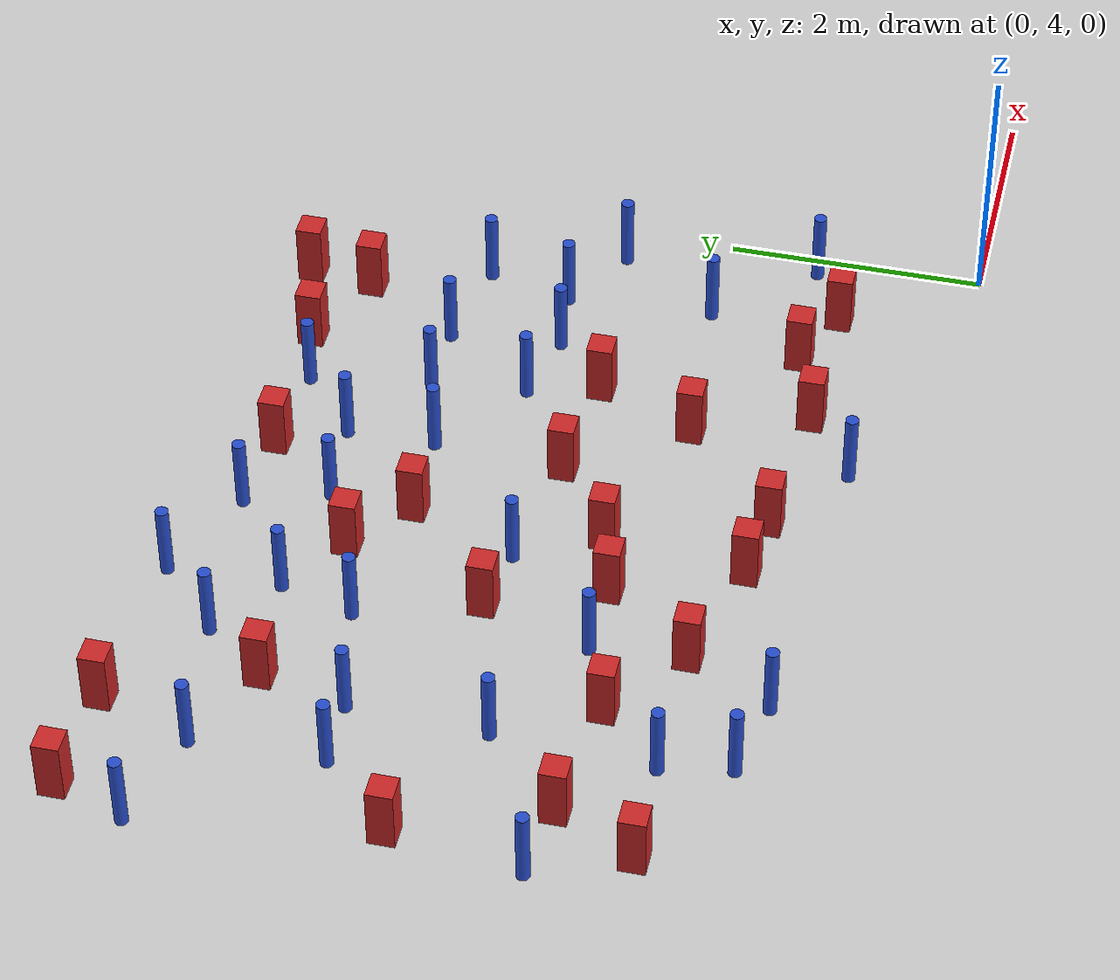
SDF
<sdf version="1.6">
 <world name="default">
  <model name="ground_plane">
   <static>1</static>
   <link name="link">
    <collision name="collision">
     <geometry><plane><normal>0 0 1</normal><size>100 100</size></plane></geometry>
     <surface><friction><ode><mu>100</mu><mu2>50</mu2></ode></friction></surface>
    </collision>
    <visual name="visual">
     <cast_shadows>0</cast_shadows>
     <geometry><plane><normal>0 0 1</normal><size>100 100</size></plane></geometry>
     <material>
      <ambient>1.0 1.0 1.0 1.0</ambient>
      <diffuse>0.8 0.8 0.8 1.0</diffuse>
      <specular>0.01 0.01 0.01 1.000000</specular>
     </material>
    </visual>
   </link>
  </model>
  <model name="pole_obstacle0">
   <static>true</static>
   <pose>-4.90041004545 4.79011778773 7.38925637345e-09 -8.47170692796e-08 1.24976764786e-08 -1.74513093032e-07</pose>
   <link name="link">
    <pose>0 0 0.3 0 -0 0</pose>
    <inertial>
     <mass>1</mass>
     <inertia><ixx>0.145833</ixx><ixy>0</ixy><ixz>0</ixz><iyy>0.145833</iyy><iyz>0</iyz><izz>0.125</izz></inertia>
    </inertial>
    <collision name="collision">
     <geometry><cylinder><radius>0.05</radius><length>.6</length></cylinder></geometry>
    </collision>
    <visual name="visual">
     <geometry><cylinder><radius>0.05</radius><length>.6</length></cylinder></geometry>
     <material>
      <script><name>Gazebo/Blue</name><uri>file://media/materials/scripts/gazebo.material</uri></script>
     </material>
    </visual>
   </link>
  </model>
  <model name="square_post_obstacle7">
   <static>true</static>
   <pose>-3.08108720466 5.1367049342 1.91545236811e-07 -7.35059704564e-06 1.12565212e-07 2.39332434364e-05</pose>
   <link name="link">
    <pose>0 0 0.25 0 -0 0</pose>
    <inertial>
     <mass>100</mass>
     <inertia>
      <ixx>0.166667</ixx>
      <ixy>0</ixy>
      <ixz>0</ixz>
      <iyy>0.166667</iyy>
      <iyz>0</iyz>
      <izz>0.166667</izz>
     </inertia>
    </inertial>
    <collision name="collision"><geometry><box><size>.2 .2 .5</size></box></geometry></collision>
    <visual name="visual">
     <geometry><box><size>.2 .2 .5</size></box></geometry>
     <material>
      <script><name>Gazebo/Red</name><uri>file://media/materials/scripts/gazebo.material</uri></script>
     </material>
    </visual>
   </link>
  </model>
  <model name="square_post_obstacle15">
   <static>true</static>
   <pose>-5.38946317511 8.39628046984 1.91545236811e-07 -7.35059704564e-06 1.12565212e-07 2.39332434364e-05</pose>
   <link name="link">
    <pose>0 0 0.25 0 -0 0</pose>
    <inertial>
     <mass>100</mass>
     <inertia>
      <ixx>0.166667</ixx>
      <ixy>0</ixy>
      <ixz>0</ixz>
      <iyy>0.166667</iyy>
      <iyz>0</iyz>
      <izz>0.166667</izz>
     </inertia>
    </inertial>
    <collision name="collision"><geometry><box><size>.2 .2 .5</size></box></geometry></collision>
    <visual name="visual">
     <geometry><box><size>.2 .2 .5</size></box></geometry>
     <material>
      <script><name>Gazebo/Red</name><uri>file://media/materials/scripts/gazebo.material</uri></script>
     </material>
    </visual>
   </link>
  </model>
  <model name="pole_obstacle13">
   <static>true</static>
   <pose>-2.13632141731 7.96799120031 7.38925637345e-09 -8.47170692799e-08 1.24976765031e-08 -1.7451309302e-07</pose>
   <link name="link">
    <pose>0 0 0.3 0 -0 0</pose>
    <inertial>
     <mass>1</mass>
     <inertia><ixx>0.145833</ixx><ixy>0</ixy><ixz>0</ixz><iyy>0.145833</iyy><iyz>0</iyz><izz>0.125</izz></inertia>
    </inertial>
    <collision name="collision">
     <geometry><cylinder><radius>0.05</radius><length>.6</length></cylinder></geometry>
    </collision>
    <visual name="visual">
     <geometry><cylinder><radius>0.05</radius><length>.6</length></cylinder></geometry>
     <material>
      <script><name>Gazebo/Blue</name><uri>file://media/materials/scripts/gazebo.material</uri></script>
     </material>
    </visual>
   </link>
  </model>
  <model name="square_post_obstacle25">
   <static>true</static>
   <pose>-2.83194556536 6.76145201154 1.91545236811e-07 -7.35059704564e-06 1.12565212e-07 2.39332434364e-05</pose>
   <link name="link">
    <pose>0 0 0.25 0 -0 0</pose>
    <inertial>
     <mass>100</mass>
     <inertia>
      <ixx>0.166667</ixx>
      <ixy>0</ixy>
      <ixz>0</ixz>
      <iyy>0.166667</iyy>
      <iyz>0</iyz>
      <izz>0.166667</izz>
     </inertia>
    </inertial>
    <collision name="collision"><geometry><box><size>.2 .2 .5</size></box></geometry></collision>
    <visual name="visual">
     <geometry><box><size>.2 .2 .5</size></box></geometry>
     <material>
      <script><name>Gazebo/Red</name><uri>file://media/materials/scripts/gazebo.material</uri></script>
     </material>
    </visual>
   </link>
  </model>
  <model name="square_post_obstacle30">
   <static>true</static>
   <pose>-1.77215934666 9.01925671238 1.91545236811e-07 -7.35059704564e-06 1.12565212e-07 2.39332434364e-05</pose>
   <link name="link">
    <pose>0 0 0.25 0 -0 0</pose>
    <inertial>
     <mass>100</mass>
     <inertia>
      <ixx>0.166667</ixx>
      <ixy>0</ixy>
      <ixz>0</ixz>
      <iyy>0.166667</iyy>
      <iyz>0</iyz>
      <izz>0.166667</izz>
     </inertia>
    </inertial>
    <collision name="collision"><geometry><box><size>.2 .2 .5</size></box></geometry></collision>
    <visual name="visual">
     <geometry><box><size>.2 .2 .5</size></box></geometry>
     <material>
      <script><name>Gazebo/Red</name><uri>file://media/materials/scripts/gazebo.material</uri></script>
     </material>
    </visual>
   </link>
  </model>
  <model name="pole_obstacle23">
   <static>true</static>
   <pose>-4.64388195433 7.92467603434 7.38925637345e-09 -8.47170692796e-08 1.24976764786e-08 -1.74513093032e-07</pose>
   <link name="link">
    <pose>0 0 0.3 0 -0 0</pose>
    <inertial>
     <mass>1</mass>
     <inertia><ixx>0.145833</ixx><ixy>0</ixy><ixz>0</ixz><iyy>0.145833</iyy><iyz>0</iyz><izz>0.125</izz></inertia>
    </inertial>
    <collision name="collision">
     <geometry><cylinder><radius>0.05</radius><length>.6</length></cylinder></geometry>
    </collision>
    <visual name="visual">
     <geometry><cylinder><radius>0.05</radius><length>.6</length></cylinder></geometry>
     <material>
      <script><name>Gazebo/Blue</name><uri>file://media/materials/scripts/gazebo.material</uri></script>
     </material>
    </visual>
   </link>
  </model>
  <model name="pole_obstacle26">
   <static>true</static>
   <pose>-4.61162238136 6.16841943095 7.38925637345e-09 -8.47170692796e-08 1.24976764786e-08 -1.74513093032e-07</pose>
   <link name="link">
    <pose>0 0 0.3 0 -0 0</pose>
    <inertial>
     <mass>1</mass>
     <inertia><ixx>0.145833</ixx><ixy>0</ixy><ixz>0</ixz><iyy>0.145833</iyy><iyz>0</iyz><izz>0.125</izz></inertia>
    </inertial>
    <collision name="collision">
     <geometry><cylinder><radius>0.05</radius><length>.6</length></cylinder></geometry>
    </collision>
    <visual name="visual">
     <geometry><cylinder><radius>0.05</radius><length>.6</length></cylinder></geometry>
     <material>
      <script><name>Gazebo/Blue</name><uri>file://media/materials/scripts/gazebo.material</uri></script>
     </material>
    </visual>
   </link>
  </model>
  <model name="pole_obstacle37">
   <static>true</static>
   <pose>-5.01890764935 8.88823943129 7.38925637345e-09 -8.471706928e-08 1.24976765081e-08 -1.74513093015e-07</pose>
   <link name="link">
    <pose>0 0 0.3 0 -0 0</pose>
    <inertial>
     <mass>1</mass>
     <inertia><ixx>0.145833</ixx><ixy>0</ixy><ixz>0</ixz><iyy>0.145833</iyy><iyz>0</iyz><izz>0.125</izz></inertia>
    </inertial>
    <collision name="collision">
     <geometry><cylinder><radius>0.05</radius><length>.6</length></cylinder></geometry>
    </collision>
    <visual name="visual">
     <geometry><cylinder><radius>0.05</radius><length>.6</length></cylinder></geometry>
     <material>
      <script><name>Gazebo/Blue</name><uri>file://media/materials/scripts/gazebo.material</uri></script>
     </material>
    </visual>
   </link>
  </model>
  <model name="pole_obstacle38">
   <static>true</static>
   <pose>-6.06502686461 7.71827825272 7.38925637345e-09 -8.47170692796e-08 1.24976764786e-08 -1.74513093032e-07</pose>
   <link name="link">
    <pose>0 0 0.3 0 -0 0</pose>
    <inertial>
     <mass>1</mass>
     <inertia><ixx>0.145833</ixx><ixy>0</ixy><ixz>0</ixz><iyy>0.145833</iyy><iyz>0</iyz><izz>0.125</izz></inertia>
    </inertial>
    <collision name="collision">
     <geometry><cylinder><radius>0.05</radius><length>.6</length></cylinder></geometry>
    </collision>
    <visual name="visual">
     <geometry><cylinder><radius>0.05</radius><length>.6</length></cylinder></geometry>
     <material>
      <script><name>Gazebo/Blue</name><uri>file://media/materials/scripts/gazebo.material</uri></script>
     </material>
    </visual>
   </link>
  </model>
  <model name="square_post_obstacle46">
   <static>true</static>
   <pose>-1.88935254339 5.03053389389 1.91545236811e-07 -7.35059704564e-06 1.12565212e-07 2.39332434364e-05</pose>
   <link name="link">
    <pose>0 0 0.25 0 -0 0</pose>
    <inertial>
     <mass>100</mass>
     <inertia>
      <ixx>0.166667</ixx>
      <ixy>0</ixy>
      <ixz>0</ixz>
      <iyy>0.166667</iyy>
      <iyz>0</iyz>
      <izz>0.166667</izz>
     </inertia>
    </inertial>
    <collision name="collision"><geometry><box><size>.2 .2 .5</size></box></geometry></collision>
    <visual name="visual">
     <geometry><box><size>.2 .2 .5</size></box></geometry>
     <material>
      <script><name>Gazebo/Red</name><uri>file://media/materials/scripts/gazebo.material</uri></script>
     </material>
    </visual>
   </link>
  </model>
  <model name="square_post_obstacle50">
   <static>true</static>
   <pose>-0.694250307538 5.01690014415 1.91545236811e-07 -7.35059704564e-06 1.12565212e-07 2.39332434364e-05</pose>
   <link name="link">
    <pose>0 0 0.25 0 -0 0</pose>
    <inertial>
     <mass>100</mass>
     <inertia>
      <ixx>0.166667</ixx>
      <ixy>0</ixy>
      <ixz>0</ixz>
      <iyy>0.166667</iyy>
      <iyz>0</iyz>
      <izz>0.166667</izz>
     </inertia>
    </inertial>
    <collision name="collision"><geometry><box><size>.2 .2 .5</size></box></geometry></collision>
    <visual name="visual">
     <geometry><box><size>.2 .2 .5</size></box></geometry>
     <material>
      <script><name>Gazebo/Red</name><uri>file://media/materials/scripts/gazebo.material</uri></script>
     </material>
    </visual>
   </link>
  </model>
  <model name="pole_obstacle51">
   <static>true</static>
   <pose>-4.49223622512 9.3711759897 7.38925637345e-09 -8.471706928e-08 1.24976765081e-08 -1.74513093015e-07</pose>
   <link name="link">
    <pose>0 0 0.3 0 -0 0</pose>
    <inertial>
     <mass>1</mass>
     <inertia><ixx>0.145833</ixx><ixy>0</ixy><ixz>0</ixz><iyy>0.145833</iyy><iyz>0</iyz><izz>0.125</izz></inertia>
    </inertial>
    <collision name="collision">
     <geometry><cylinder><radius>0.05</radius><length>.6</length></cylinder></geometry>
    </collision>
    <visual name="visual">
     <geometry><cylinder><radius>0.05</radius><length>.6</length></cylinder></geometry>
     <material>
      <script><name>Gazebo/Blue</name><uri>file://media/materials/scripts/gazebo.material</uri></script>
     </material>
    </visual>
   </link>
  </model>
  <model name="square_post_obstacle63">
   <static>true</static>
   <pose>-6.17478697632 6.05411711917 1.91545236811e-07 -7.35059704564e-06 1.12565212e-07 2.39332434364e-05</pose>
   <link name="link">
    <pose>0 0 0.25 0 -0 0</pose>
    <inertial>
     <mass>100</mass>
     <inertia>
      <ixx>0.166667</ixx>
      <ixy>0</ixy>
      <ixz>0</ixz>
      <iyy>0.166667</iyy>
      <iyz>0</iyz>
      <izz>0.166667</izz>
     </inertia>
    </inertial>
    <collision name="collision"><geometry><box><size>.2 .2 .5</size></box></geometry></collision>
    <visual name="visual">
     <geometry><box><size>.2 .2 .5</size></box></geometry>
     <material>
      <script><name>Gazebo/Red</name><uri>file://media/materials/scripts/gazebo.material</uri></script>
     </material>
    </visual>
   </link>
  </model>
  <model name="pole_obstacle63">
   <static>true</static>
   <pose>-6.09711467989 8.7223908616 7.38925637345e-09 -8.471706928e-08 1.24976765081e-08 -1.74513093015e-07</pose>
   <link name="link">
    <pose>0 0 0.3 0 -0 0</pose>
    <inertial>
     <mass>1</mass>
     <inertia><ixx>0.145833</ixx><ixy>0</ixy><ixz>0</ixz><iyy>0.145833</iyy><iyz>0</iyz><izz>0.125</izz></inertia>
    </inertial>
    <collision name="collision">
     <geometry><cylinder><radius>0.05</radius><length>.6</length></cylinder></geometry>
    </collision>
    <visual name="visual">
     <geometry><cylinder><radius>0.05</radius><length>.6</length></cylinder></geometry>
     <material>
      <script><name>Gazebo/Blue</name><uri>file://media/materials/scripts/gazebo.material</uri></script>
     </material>
    </visual>
   </link>
  </model>
  <model name="square_post_obstacle68">
   <static>true</static>
   <pose>-4.01927573568 6.15131273928 1.91545236811e-07 -7.35059704564e-06 1.12565212e-07 2.39332434364e-05</pose>
   <link name="link">
    <pose>0 0 0.25 0 -0 0</pose>
    <inertial>
     <mass>100</mass>
     <inertia>
      <ixx>0.166667</ixx>
      <ixy>0</ixy>
      <ixz>0</ixz>
      <iyy>0.166667</iyy>
      <iyz>0</iyz>
      <izz>0.166667</izz>
     </inertia>
    </inertial>
    <collision name="collision"><geometry><box><size>.2 .2 .5</size></box></geometry></collision>
    <visual name="visual">
     <geometry><box><size>.2 .2 .5</size></box></geometry>
     <material>
      <script><name>Gazebo/Red</name><uri>file://media/materials/scripts/gazebo.material</uri></script>
     </material>
    </visual>
   </link>
  </model>
  <model name="square_post_obstacle75">
   <static>true</static>
   <pose>-6.61354602562 7.15502942189 1.91545236811e-07 -7.35059704564e-06 1.12565212e-07 2.39332434364e-05</pose>
   <link name="link">
    <pose>0 0 0.25 0 -0 0</pose>
    <inertial>
     <mass>100</mass>
     <inertia>
      <ixx>0.166667</ixx>
      <ixy>0</ixy>
      <ixz>0</ixz>
      <iyy>0.166667</iyy>
      <iyz>0</iyz>
      <izz>0.166667</izz>
     </inertia>
    </inertial>
    <collision name="collision"><geometry><box><size>.2 .2 .5</size></box></geometry></collision>
    <visual name="visual">
     <geometry><box><size>.2 .2 .5</size></box></geometry>
     <material>
      <script><name>Gazebo/Red</name><uri>file://media/materials/scripts/gazebo.material</uri></script>
     </material>
    </visual>
   </link>
  </model>
  <model name="square_post_obstacle76">
   <static>true</static>
   <pose>-2.2187627527 5.90376065565 1.91545236811e-07 -7.35059704564e-06 1.12565212e-07 2.39332434364e-05</pose>
   <link name="link">
    <pose>0 0 0.25 0 -0 0</pose>
    <inertial>
     <mass>100</mass>
     <inertia>
      <ixx>0.166667</ixx>
      <ixy>0</ixy>
      <ixz>0</ixz>
      <iyy>0.166667</iyy>
      <iyz>0</iyz>
      <izz>0.166667</izz>
     </inertia>
    </inertial>
    <collision name="collision"><geometry><box><size>.2 .2 .5</size></box></geometry></collision>
    <visual name="visual">
     <geometry><box><size>.2 .2 .5</size></box></geometry>
     <material>
      <script><name>Gazebo/Red</name><uri>file://media/materials/scripts/gazebo.material</uri></script>
     </material>
    </visual>
   </link>
  </model>
  <model name="pole_obstacle87">
   <static>true</static>
   <pose>-5.63232811453 5.4548434658 7.38925637345e-09 -8.47170692796e-08 1.24976764786e-08 -1.74513093032e-07</pose>
   <link name="link">
    <pose>0 0 0.3 0 -0 0</pose>
    <inertial>
     <mass>1</mass>
     <inertia><ixx>0.145833</ixx><ixy>0</ixy><ixz>0</ixz><iyy>0.145833</iyy><iyz>0</iyz><izz>0.125</izz></inertia>
    </inertial>
    <collision name="collision">
     <geometry><cylinder><radius>0.05</radius><length>.6</length></cylinder></geometry>
    </collision>
    <visual name="visual">
     <geometry><cylinder><radius>0.05</radius><length>.6</length></cylinder></geometry>
     <material>
      <script><name>Gazebo/Blue</name><uri>file://media/materials/scripts/gazebo.material</uri></script>
     </material>
    </visual>
   </link>
  </model>
  <model name="pole_obstacle96">
   <static>true</static>
   <pose>-0.911840342511 7.15625360255 7.38925637345e-09 -8.471706928e-08 1.24976765086e-08 -1.74513093015e-07</pose>
   <link name="link">
    <pose>0 0 0.3 0 -0 0</pose>
    <inertial>
     <mass>1</mass>
     <inertia><ixx>0.145833</ixx><ixy>0</ixy><ixz>0</ixz><iyy>0.145833</iyy><iyz>0</iyz><izz>0.125</izz></inertia>
    </inertial>
    <collision name="collision">
     <geometry><cylinder><radius>0.05</radius><length>.6</length></cylinder></geometry>
    </collision>
    <visual name="visual">
     <geometry><cylinder><radius>0.05</radius><length>.6</length></cylinder></geometry>
     <material>
      <script><name>Gazebo/Blue</name><uri>file://media/materials/scripts/gazebo.material</uri></script>
     </material>
    </visual>
   </link>
  </model>
  <model name="square_post_obstacle86">
   <static>true</static>
   <pose>-4.5598008904 5.45001695125 1.91545236811e-07 -7.35059704564e-06 1.12565212e-07 2.39332434364e-05</pose>
   <link name="link">
    <pose>0 0 0.25 0 -0 0</pose>
    <inertial>
     <mass>100</mass>
     <inertia>
      <ixx>0.166667</ixx>
      <ixy>0</ixy>
      <ixz>0</ixz>
      <iyy>0.166667</iyy>
      <iyz>0</iyz>
      <izz>0.166667</izz>
     </inertia>
    </inertial>
    <collision name="collision"><geometry><box><size>.2 .2 .5</size></box></geometry></collision>
    <visual name="visual">
     <geometry><box><size>.2 .2 .5</size></box></geometry>
     <material>
      <script><name>Gazebo/Red</name><uri>file://media/materials/scripts/gazebo.material</uri></script>
     </material>
    </visual>
   </link>
  </model>
  <model name="pole_obstacle97">
   <static>true</static>
   <pose>-2.43078610152 4.64739310657 7.38925637345e-09 -8.47170692798e-08 1.24976765033e-08 -1.74513093019e-07</pose>
   <link name="link">
    <pose>0 0 0.3 0 -0 0</pose>
    <inertial>
     <mass>1</mass>
     <inertia><ixx>0.145833</ixx><ixy>0</ixy><ixz>0</ixz><iyy>0.145833</iyy><iyz>0</iyz><izz>0.125</izz></inertia>
    </inertial>
    <collision name="collision">
     <geometry><cylinder><radius>0.05</radius><length>.6</length></cylinder></geometry>
    </collision>
    <visual name="visual">
     <geometry><cylinder><radius>0.05</radius><length>.6</length></cylinder></geometry>
     <material>
      <script><name>Gazebo/Blue</name><uri>file://media/materials/scripts/gazebo.material</uri></script>
     </material>
    </visual>
   </link>
  </model>
  <model name="pole_obstacle101">
   <static>true</static>
   <pose>-3.6860149269 9.02939962403 7.38925637345e-09 -8.47170692793e-08 1.24976764408e-08 -1.74513093041e-07</pose>
   <link name="link">
    <pose>0 0 0.3 0 -0 0</pose>
    <inertial>
     <mass>1</mass>
     <inertia><ixx>0.145833</ixx><ixy>0</ixy><ixz>0</ixz><iyy>0.145833</iyy><iyz>0</iyz><izz>0.125</izz></inertia>
    </inertial>
    <collision name="collision">
     <geometry><cylinder><radius>0.05</radius><length>.6</length></cylinder></geometry>
    </collision>
    <visual name="visual">
     <geometry><cylinder><radius>0.05</radius><length>.6</length></cylinder></geometry>
     <material>
      <script><name>Gazebo/Blue</name><uri>file://media/materials/scripts/gazebo.material</uri></script>
     </material>
    </visual>
   </link>
  </model>
  <model name="square_post_obstacle91">
   <static>true</static>
   <pose>-5.18790217122 5.93545474325 1.91545236811e-07 -7.35059704564e-06 1.12565212e-07 2.39332434364e-05</pose>
   <link name="link">
    <pose>0 0 0.25 0 -0 0</pose>
    <inertial>
     <mass>100</mass>
     <inertia>
      <ixx>0.166667</ixx>
      <ixy>0</ixy>
      <ixz>0</ixz>
      <iyy>0.166667</iyy>
      <iyz>0</iyz>
      <izz>0.166667</izz>
     </inertia>
    </inertial>
    <collision name="collision"><geometry><box><size>.2 .2 .5</size></box></geometry></collision>
    <visual name="visual">
     <geometry><box><size>.2 .2 .5</size></box></geometry>
     <material>
      <script><name>Gazebo/Red</name><uri>file://media/materials/scripts/gazebo.material</uri></script>
     </material>
    </visual>
   </link>
  </model>
  <model name="pole_obstacle106">
   <static>true</static>
   <pose>-5.52808940711 4.92229902347 7.38925637345e-09 -8.47170692796e-08 1.24976764786e-08 -1.74513093032e-07</pose>
   <link name="link">
    <pose>0 0 0.3 0 -0 0</pose>
    <inertial>
     <mass>1</mass>
     <inertia><ixx>0.145833</ixx><ixy>0</ixy><ixz>0</ixz><iyy>0.145833</iyy><iyz>0</iyz><izz>0.125</izz></inertia>
    </inertial>
    <collision name="collision">
     <geometry><cylinder><radius>0.05</radius><length>.6</length></cylinder></geometry>
    </collision>
    <visual name="visual">
     <geometry><cylinder><radius>0.05</radius><length>.6</length></cylinder></geometry>
     <material>
      <script><name>Gazebo/Blue</name><uri>file://media/materials/scripts/gazebo.material</uri></script>
     </material>
    </visual>
   </link>
  </model>
  <model name="square_post_obstacle97">
   <static>true</static>
   <pose>-6.47592038201 5.43582587929 1.91545236811e-07 -7.35059704564e-06 1.12565212e-07 2.39332434364e-05</pose>
   <link name="link">
    <pose>0 0 0.25 0 -0 0</pose>
    <inertial>
     <mass>100</mass>
     <inertia>
      <ixx>0.166667</ixx>
      <ixy>0</ixy>
      <ixz>0</ixz>
      <iyy>0.166667</iyy>
      <iyz>0</iyz>
      <izz>0.166667</izz>
     </inertia>
    </inertial>
    <collision name="collision"><geometry><box><size>.2 .2 .5</size></box></geometry></collision>
    <visual name="visual">
     <geometry><box><size>.2 .2 .5</size></box></geometry>
     <material>
      <script><name>Gazebo/Red</name><uri>file://media/materials/scripts/gazebo.material</uri></script>
     </material>
    </visual>
   </link>
  </model>
  <model name="square_post_obstacle98">
   <static>true</static>
   <pose>-3.50363936073 7.75468292573 1.91545236811e-07 -7.35059704564e-06 1.12565212e-07 2.39332434364e-05</pose>
   <link name="link">
    <pose>0 0 0.25 0 -0 0</pose>
    <inertial>
     <mass>100</mass>
     <inertia>
      <ixx>0.166667</ixx>
      <ixy>0</ixy>
      <ixz>0</ixz>
      <iyy>0.166667</iyy>
      <iyz>0</iyz>
      <izz>0.166667</izz>
     </inertia>
    </inertial>
    <collision name="collision"><geometry><box><size>.2 .2 .5</size></box></geometry></collision>
    <visual name="visual">
     <geometry><box><size>.2 .2 .5</size></box></geometry>
     <material>
      <script><name>Gazebo/Red</name><uri>file://media/materials/scripts/gazebo.material</uri></script>
     </material>
    </visual>
   </link>
  </model>
  <model name="pole_obstacle116">
   <static>true</static>
   <pose>-0.326461420758 6.80777717425 7.38925637345e-09 -8.471706928e-08 1.24976765079e-08 -1.74513093015e-07</pose>
   <link name="link">
    <pose>0 0 0.3 0 -0 0</pose>
    <inertial>
     <mass>1</mass>
     <inertia><ixx>0.145833</ixx><ixy>0</ixy><ixz>0</ixz><iyy>0.145833</iyy><iyz>0</iyz><izz>0.125</izz></inertia>
    </inertial>
    <collision name="collision">
     <geometry><cylinder><radius>0.05</radius><length>.6</length></cylinder></geometry>
    </collision>
    <visual name="visual">
     <geometry><cylinder><radius>0.05</radius><length>.6</length></cylinder></geometry>
     <material>
      <script><name>Gazebo/Blue</name><uri>file://media/materials/scripts/gazebo.material</uri></script>
     </material>
    </visual>
   </link>
  </model>
  <model name="pole_obstacle126">
   <static>true</static>
   <pose>-1.53864034864 7.96190276713 7.38925637345e-09 -8.47170692799e-08 1.24976764983e-08 -1.74513093021e-07</pose>
   <link name="link">
    <pose>0 0 0.3 0 -0 0</pose>
    <inertial>
     <mass>1</mass>
     <inertia><ixx>0.145833</ixx><ixy>0</ixy><ixz>0</ixz><iyy>0.145833</iyy><iyz>0</iyz><izz>0.125</izz></inertia>
    </inertial>
    <collision name="collision">
     <geometry><cylinder><radius>0.05</radius><length>.6</length></cylinder></geometry>
    </collision>
    <visual name="visual">
     <geometry><cylinder><radius>0.05</radius><length>.6</length></cylinder></geometry>
     <material>
      <script><name>Gazebo/Blue</name><uri>file://media/materials/scripts/gazebo.material</uri></script>
     </material>
    </visual>
   </link>
  </model>
  <model name="pole_obstacle127">
   <static>true</static>
   <pose>-2.77022031663 7.78093661051 7.38925637345e-09 -8.47170692798e-08 1.24976765033e-08 -1.74513093019e-07</pose>
   <link name="link">
    <pose>0 0 0.3 0 -0 0</pose>
    <inertial>
     <mass>1</mass>
     <inertia><ixx>0.145833</ixx><ixy>0</ixy><ixz>0</ixz><iyy>0.145833</iyy><iyz>0</iyz><izz>0.125</izz></inertia>
    </inertial>
    <collision name="collision">
     <geometry><cylinder><radius>0.05</radius><length>.6</length></cylinder></geometry>
    </collision>
    <visual name="visual">
     <geometry><cylinder><radius>0.05</radius><length>.6</length></cylinder></geometry>
     <material>
      <script><name>Gazebo/Blue</name><uri>file://media/materials/scripts/gazebo.material</uri></script>
     </material>
    </visual>
   </link>
  </model>
  <model name="pole_obstacle132">
   <static>true</static>
   <pose>-0.836920620603 6.01492802616 7.38925637345e-09 -8.471706928e-08 1.24976765086e-08 -1.74513093015e-07</pose>
   <link name="link">
    <pose>0 0 0.3 0 -0 0</pose>
    <inertial>
     <mass>1</mass>
     <inertia><ixx>0.145833</ixx><ixy>0</ixy><ixz>0</ixz><iyy>0.145833</iyy><iyz>0</iyz><izz>0.125</izz></inertia>
    </inertial>
    <collision name="collision">
     <geometry><cylinder><radius>0.05</radius><length>.6</length></cylinder></geometry>
    </collision>
    <visual name="visual">
     <geometry><cylinder><radius>0.05</radius><length>.6</length></cylinder></geometry>
     <material>
      <script><name>Gazebo/Blue</name><uri>file://media/materials/scripts/gazebo.material</uri></script>
     </material>
    </visual>
   </link>
  </model>
  <model name="pole_obstacle138">
   <static>true</static>
   <pose>-5.56855541832 6.67156435658 7.38925637345e-09 -8.47170692796e-08 1.24976764786e-08 -1.74513093032e-07</pose>
   <link name="link">
    <pose>0 0 0.3 0 -0 0</pose>
    <inertial>
     <mass>1</mass>
     <inertia><ixx>0.145833</ixx><ixy>0</ixy><ixz>0</ixz><iyy>0.145833</iyy><iyz>0</iyz><izz>0.125</izz></inertia>
    </inertial>
    <collision name="collision">
     <geometry><cylinder><radius>0.05</radius><length>.6</length></cylinder></geometry>
    </collision>
    <visual name="visual">
     <geometry><cylinder><radius>0.05</radius><length>.6</length></cylinder></geometry>
     <material>
      <script><name>Gazebo/Blue</name><uri>file://media/materials/scripts/gazebo.material</uri></script>
     </material>
    </visual>
   </link>
  </model>
  <model name="pole_obstacle140">
   <static>true</static>
   <pose>-5.53730651426 7.72960855693 7.38925637345e-09 -8.47170692796e-08 1.24976764786e-08 -1.74513093032e-07</pose>
   <link name="link">
    <pose>0 0 0.3 0 -0 0</pose>
    <inertial>
     <mass>1</mass>
     <inertia><ixx>0.145833</ixx><ixy>0</ixy><ixz>0</ixz><iyy>0.145833</iyy><iyz>0</iyz><izz>0.125</izz></inertia>
    </inertial>
    <collision name="collision">
     <geometry><cylinder><radius>0.05</radius><length>.6</length></cylinder></geometry>
    </collision>
    <visual name="visual">
     <geometry><cylinder><radius>0.05</radius><length>.6</length></cylinder></geometry>
     <material>
      <script><name>Gazebo/Blue</name><uri>file://media/materials/scripts/gazebo.material</uri></script>
     </material>
    </visual>
   </link>
  </model>
  <model name="pole_obstacle148">
   <static>true</static>
   <pose>-6.75593413323 6.1459177395 7.38925637345e-09 -8.47170692796e-08 1.24976764786e-08 -1.74513093032e-07</pose>
   <link name="link">
    <pose>0 0 0.3 0 -0 0</pose>
    <inertial>
     <mass>1</mass>
     <inertia><ixx>0.145833</ixx><ixy>0</ixy><ixz>0</ixz><iyy>0.145833</iyy><iyz>0</iyz><izz>0.125</izz></inertia>
    </inertial>
    <collision name="collision">
     <geometry><cylinder><radius>0.05</radius><length>.6</length></cylinder></geometry>
    </collision>
    <visual name="visual">
     <geometry><cylinder><radius>0.05</radius><length>.6</length></cylinder></geometry>
     <material>
      <script><name>Gazebo/Blue</name><uri>file://media/materials/scripts/gazebo.material</uri></script>
     </material>
    </visual>
   </link>
  </model>
  <model name="square_post_obstacle138">
   <static>true</static>
   <pose>-1.22843868507 5.24228422694 1.91545236811e-07 -7.35059704564e-06 1.12565212e-07 2.39332434364e-05</pose>
   <link name="link">
    <pose>0 0 0.25 0 -0 0</pose>
    <inertial>
     <mass>100</mass>
     <inertia>
      <ixx>0.166667</ixx>
      <ixy>0</ixy>
      <ixz>0</ixz>
      <iyy>0.166667</iyy>
      <iyz>0</iyz>
      <izz>0.166667</izz>
     </inertia>
    </inertial>
    <collision name="collision"><geometry><box><size>.2 .2 .5</size></box></geometry></collision>
    <visual name="visual">
     <geometry><box><size>.2 .2 .5</size></box></geometry>
     <material>
      <script><name>Gazebo/Red</name><uri>file://media/materials/scripts/gazebo.material</uri></script>
     </material>
    </visual>
   </link>
  </model>
  <model name="square_post_obstacle144">
   <static>true</static>
   <pose>-5.83603284577 9.44559122272 1.91545236811e-07 -7.35059704564e-06 1.12565212e-07 2.39332434364e-05</pose>
   <link name="link">
    <pose>0 0 0.25 0 -0 0</pose>
    <inertial>
     <mass>100</mass>
     <inertia>
      <ixx>0.166667</ixx>
      <ixy>0</ixy>
      <ixz>0</ixz>
      <iyy>0.166667</iyy>
      <iyz>0</iyz>
      <izz>0.166667</izz>
     </inertia>
    </inertial>
    <collision name="collision"><geometry><box><size>.2 .2 .5</size></box></geometry></collision>
    <visual name="visual">
     <geometry><box><size>.2 .2 .5</size></box></geometry>
     <material>
      <script><name>Gazebo/Red</name><uri>file://media/materials/scripts/gazebo.material</uri></script>
     </material>
    </visual>
   </link>
  </model>
  <model name="pole_obstacle155">
   <static>true</static>
   <pose>-2.78357112642 8.46362651111 7.38925637345e-09 -8.47170692793e-08 1.24976764408e-08 -1.74513093041e-07</pose>
   <link name="link">
    <pose>0 0 0.3 0 -0 0</pose>
    <inertial>
     <mass>1</mass>
     <inertia><ixx>0.145833</ixx><ixy>0</ixy><ixz>0</ixz><iyy>0.145833</iyy><iyz>0</iyz><izz>0.125</izz></inertia>
    </inertial>
    <collision name="collision">
     <geometry><cylinder><radius>0.05</radius><length>.6</length></cylinder></geometry>
    </collision>
    <visual name="visual">
     <geometry><cylinder><radius>0.05</radius><length>.6</length></cylinder></geometry>
     <material>
      <script><name>Gazebo/Blue</name><uri>file://media/materials/scripts/gazebo.material</uri></script>
     </material>
    </visual>
   </link>
  </model>
  <model name="square_post_obstacle151">
   <static>true</static>
   <pose>-1.09375247386 8.7145594023 1.91545236811e-07 -7.35059704564e-06 1.12565212e-07 2.39332434364e-05</pose>
   <link name="link">
    <pose>0 0 0.25 0 -0 0</pose>
    <inertial>
     <mass>100</mass>
     <inertia>
      <ixx>0.166667</ixx>
      <ixy>0</ixy>
      <ixz>0</ixz>
      <iyy>0.166667</iyy>
      <iyz>0</iyz>
      <izz>0.166667</izz>
     </inertia>
    </inertial>
    <collision name="collision"><geometry><box><size>.2 .2 .5</size></box></geometry></collision>
    <visual name="visual">
     <geometry><box><size>.2 .2 .5</size></box></geometry>
     <material>
      <script><name>Gazebo/Red</name><uri>file://media/materials/scripts/gazebo.material</uri></script>
     </material>
    </visual>
   </link>
  </model>
  <model name="square_post_obstacle152">
   <static>true</static>
   <pose>-1.89673379761 6.6737803108 1.91545236811e-07 -7.35059704564e-06 1.12565212e-07 2.39332434364e-05</pose>
   <link name="link">
    <pose>0 0 0.25 0 -0 0</pose>
    <inertial>
     <mass>100</mass>
     <inertia>
      <ixx>0.166667</ixx>
      <ixy>0</ixy>
      <ixz>0</ixz>
      <iyy>0.166667</iyy>
      <iyz>0</iyz>
      <izz>0.166667</izz>
     </inertia>
    </inertial>
    <collision name="collision"><geometry><box><size>.2 .2 .5</size></box></geometry></collision>
    <visual name="visual">
     <geometry><box><size>.2 .2 .5</size></box></geometry>
     <material>
      <script><name>Gazebo/Red</name><uri>file://media/materials/scripts/gazebo.material</uri></script>
     </material>
    </visual>
   </link>
  </model>
  <model name="pole_obstacle162">
   <static>true</static>
   <pose>-3.81493998387 6.92224409591 7.38925637345e-09 -8.47170692798e-08 1.24976765033e-08 -1.74513093019e-07</pose>
   <link name="link">
    <pose>0 0 0.3 0 -0 0</pose>
    <inertial>
     <mass>1</mass>
     <inertia><ixx>0.145833</ixx><ixy>0</ixy><ixz>0</ixz><iyy>0.145833</iyy><iyz>0</iyz><izz>0.125</izz></inertia>
    </inertial>
    <collision name="collision">
     <geometry><cylinder><radius>0.05</radius><length>.6</length></cylinder></geometry>
    </collision>
    <visual name="visual">
     <geometry><cylinder><radius>0.05</radius><length>.6</length></cylinder></geometry>
     <material>
      <script><name>Gazebo/Blue</name><uri>file://media/materials/scripts/gazebo.material</uri></script>
     </material>
    </visual>
   </link>
  </model>
  <model name="square_post_obstacle155">
   <static>true</static>
   <pose>-3.96791072702 8.14196426414 1.91545236811e-07 -7.35059704564e-06 1.12565212e-07 2.39332434364e-05</pose>
   <link name="link">
    <pose>0 0 0.25 0 -0 0</pose>
    <inertial>
     <mass>100</mass>
     <inertia>
      <ixx>0.166667</ixx>
      <ixy>0</ixy>
      <ixz>0</ixz>
      <iyy>0.166667</iyy>
      <iyz>0</iyz>
      <izz>0.166667</izz>
     </inertia>
    </inertial>
    <collision name="collision"><geometry><box><size>.2 .2 .5</size></box></geometry></collision>
    <visual name="visual">
     <geometry><box><size>.2 .2 .5</size></box></geometry>
     <material>
      <script><name>Gazebo/Red</name><uri>file://media/materials/scripts/gazebo.material</uri></script>
     </material>
    </visual>
   </link>
  </model>
  <model name="square_post_obstacle165">
   <static>true</static>
   <pose>-1.01910990396 9.22619740342 1.91545236811e-07 -7.35059704564e-06 1.12565212e-07 2.39332434364e-05</pose>
   <link name="link">
    <pose>0 0 0.25 0 -0 0</pose>
    <inertial>
     <mass>100</mass>
     <inertia>
      <ixx>0.166667</ixx>
      <ixy>0</ixy>
      <ixz>0</ixz>
      <iyy>0.166667</iyy>
      <iyz>0</iyz>
      <izz>0.166667</izz>
     </inertia>
    </inertial>
    <collision name="collision"><geometry><box><size>.2 .2 .5</size></box></geometry></collision>
    <visual name="visual">
     <geometry><box><size>.2 .2 .5</size></box></geometry>
     <material>
      <script><name>Gazebo/Red</name><uri>file://media/materials/scripts/gazebo.material</uri></script>
     </material>
    </visual>
   </link>
  </model>
  <model name="square_post_obstacle175">
   <static>true</static>
   <pose>-4.35626293084 7.01154105103 1.91545236811e-07 -7.35059704564e-06 1.12565212e-07 2.39332434364e-05</pose>
   <link name="link">
    <pose>0 0 0.25 0 -0 0</pose>
    <inertial>
     <mass>100</mass>
     <inertia>
      <ixx>0.166667</ixx>
      <ixy>0</ixy>
      <ixz>0</ixz>
      <iyy>0.166667</iyy>
      <iyz>0</iyz>
      <izz>0.166667</izz>
     </inertia>
    </inertial>
    <collision name="collision"><geometry><box><size>.2 .2 .5</size></box></geometry></collision>
    <visual name="visual">
     <geometry><box><size>.2 .2 .5</size></box></geometry>
     <material>
      <script><name>Gazebo/Red</name><uri>file://media/materials/scripts/gazebo.material</uri></script>
     </material>
    </visual>
   </link>
  </model>
  <model name="square_post_obstacle176">
   <static>true</static>
   <pose>-3.01731312975 8.95675573147 1.91545236811e-07 -7.35059704564e-06 1.12565212e-07 2.39332434364e-05</pose>
   <link name="link">
    <pose>0 0 0.25 0 -0 0</pose>
    <inertial>
     <mass>100</mass>
     <inertia>
      <ixx>0.166667</ixx>
      <ixy>0</ixy>
      <ixz>0</ixz>
      <iyy>0.166667</iyy>
      <iyz>0</iyz>
      <izz>0.166667</izz>
     </inertia>
    </inertial>
    <collision name="collision"><geometry><box><size>.2 .2 .5</size></box></geometry></collision>
    <visual name="visual">
     <geometry><box><size>.2 .2 .5</size></box></geometry>
     <material>
      <script><name>Gazebo/Red</name><uri>file://media/materials/scripts/gazebo.material</uri></script>
     </material>
    </visual>
   </link>
  </model>
  <model name="square_post_obstacle178">
   <static>true</static>
   <pose>-6.69343282778 9.49369686746 1.91545236811e-07 -7.35059704564e-06 1.12565212e-07 2.39332434364e-05</pose>
   <link name="link">
    <pose>0 0 0.25 0 -0 0</pose>
    <inertial>
     <mass>100</mass>
     <inertia>
      <ixx>0.166667</ixx>
      <ixy>0</ixy>
      <ixz>0</ixz>
      <iyy>0.166667</iyy>
      <iyz>0</iyz>
      <izz>0.166667</izz>
     </inertia>
    </inertial>
    <collision name="collision"><geometry><box><size>.2 .2 .5</size></box></geometry></collision>
    <visual name="visual">
     <geometry><box><size>.2 .2 .5</size></box></geometry>
     <material>
      <script><name>Gazebo/Red</name><uri>file://media/materials/scripts/gazebo.material</uri></script>
     </material>
    </visual>
   </link>
  </model>
  <model name="square_post_obstacle187">
   <static>true</static>
   <pose>-3.49378318139 6.30205990878 1.91545236811e-07 -7.35059704564e-06 1.12565212e-07 2.39332434364e-05</pose>
   <link name="link">
    <pose>0 0 0.25 0 -0 0</pose>
    <inertial>
     <mass>100</mass>
     <inertia>
      <ixx>0.166667</ixx>
      <ixy>0</ixy>
      <ixz>0</ixz>
      <iyy>0.166667</iyy>
      <iyz>0</iyz>
      <izz>0.166667</izz>
     </inertia>
    </inertial>
    <collision name="collision"><geometry><box><size>.2 .2 .5</size></box></geometry></collision>
    <visual name="visual">
     <geometry><box><size>.2 .2 .5</size></box></geometry>
     <material>
      <script><name>Gazebo/Red</name><uri>file://media/materials/scripts/gazebo.material</uri></script>
     </material>
    </visual>
   </link>
  </model>
  <model name="square_post_obstacle199">
   <static>true</static>
   <pose>-3.62364725218 5.20739193493 1.91545236811e-07 -7.35059704564e-06 1.12565212e-07 2.39332434364e-05</pose>
   <link name="link">
    <pose>0 0 0.25 0 -0 0</pose>
    <inertial>
     <mass>100</mass>
     <inertia>
      <ixx>0.166667</ixx>
      <ixy>0</ixy>
      <ixz>0</ixz>
      <iyy>0.166667</iyy>
      <iyz>0</iyz>
      <izz>0.166667</izz>
     </inertia>
    </inertial>
    <collision name="collision"><geometry><box><size>.2 .2 .5</size></box></geometry></collision>
    <visual name="visual">
     <geometry><box><size>.2 .2 .5</size></box></geometry>
     <material>
      <script><name>Gazebo/Red</name><uri>file://media/materials/scripts/gazebo.material</uri></script>
     </material>
    </visual>
   </link>
  </model>
  <model name="pole_obstacle193">
   <static>true</static>
   <pose>-2.03943871943 7.23383958618 7.38925637345e-09 -8.471706928e-08 1.24976765103e-08 -1.74513093015e-07</pose>
   <link name="link">
    <pose>0 0 0.3 0 -0 0</pose>
    <inertial>
     <mass>1</mass>
     <inertia><ixx>0.145833</ixx><ixy>0</ixy><ixz>0</ixz><iyy>0.145833</iyy><iyz>0</iyz><izz>0.125</izz></inertia>
    </inertial>
    <collision name="collision">
     <geometry><cylinder><radius>0.05</radius><length>.6</length></cylinder></geometry>
    </collision>
    <visual name="visual">
     <geometry><cylinder><radius>0.05</radius><length>.6</length></cylinder></geometry>
     <material>
      <script><name>Gazebo/Blue</name><uri>file://media/materials/scripts/gazebo.material</uri></script>
     </material>
    </visual>
   </link>
  </model>
  <model name="pole_obstacle196">
   <static>true</static>
   <pose>-0.749760275752 7.82052776399 7.38925637345e-09 -8.471706928e-08 1.24976765086e-08 -1.74513093015e-07</pose>
   <link name="link">
    <pose>0 0 0.3 0 -0 0</pose>
    <inertial>
     <mass>1</mass>
     <inertia><ixx>0.145833</ixx><ixy>0</ixy><ixz>0</ixz><iyy>0.145833</iyy><iyz>0</iyz><izz>0.125</izz></inertia>
    </inertial>
    <collision name="collision">
     <geometry><cylinder><radius>0.05</radius><length>.6</length></cylinder></geometry>
    </collision>
    <visual name="visual">
     <geometry><cylinder><radius>0.05</radius><length>.6</length></cylinder></geometry>
     <material>
      <script><name>Gazebo/Blue</name><uri>file://media/materials/scripts/gazebo.material</uri></script>
     </material>
    </visual>
   </link>
  </model>
  <model name="pole_obstacle200">
   <static>true</static>
   <pose>-0.174356841171 5.28133419951 7.38925637345e-09 -8.47170692799e-08 1.24976765043e-08 -1.74513093019e-07</pose>
   <link name="link">
    <pose>0 0 0.3 0 -0 0</pose>
    <inertial>
     <mass>1</mass>
     <inertia><ixx>0.145833</ixx><ixy>0</ixy><ixz>0</ixz><iyy>0.145833</iyy><iyz>0</iyz><izz>0.125</izz></inertia>
    </inertial>
    <collision name="collision">
     <geometry><cylinder><radius>0.05</radius><length>.6</length></cylinder></geometry>
    </collision>
    <visual name="visual">
     <geometry><cylinder><radius>0.05</radius><length>.6</length></cylinder></geometry>
     <material>
      <script><name>Gazebo/Blue</name><uri>file://media/materials/scripts/gazebo.material</uri></script>
     </material>
    </visual>
   </link>
  </model>
  <model name="pole_obstacle205">
   <static>true</static>
   <pose>-2.26291561371 8.90489558708 7.38925637345e-09 -8.47170692793e-08 1.24976764408e-08 -1.74513093041e-07</pose>
   <link name="link">
    <pose>0 0 0.3 0 -0 0</pose>
    <inertial>
     <mass>1</mass>
     <inertia><ixx>0.145833</ixx><ixy>0</ixy><ixz>0</ixz><iyy>0.145833</iyy><iyz>0</iyz><izz>0.125</izz></inertia>
    </inertial>
    <collision name="collision">
     <geometry><cylinder><radius>0.05</radius><length>.6</length></cylinder></geometry>
    </collision>
    <visual name="visual">
     <geometry><cylinder><radius>0.05</radius><length>.6</length></cylinder></geometry>
     <material>
      <script><name>Gazebo/Blue</name><uri>file://media/materials/scripts/gazebo.material</uri></script>
     </material>
    </visual>
   </link>
  </model>
  <model name="pole_obstacle216">
   <static>true</static>
   <pose>-3.47746999043 8.40237002078 7.38925637345e-09 -8.47170692799e-08 1.24976765012e-08 -1.74513093021e-07</pose>
   <link name="link">
    <pose>0 0 0.3 0 -0 0</pose>
    <inertial>
     <mass>1</mass>
     <inertia><ixx>0.145833</ixx><ixy>0</ixy><ixz>0</ixz><iyy>0.145833</iyy><iyz>0</iyz><izz>0.125</izz></inertia>
    </inertial>
    <collision name="collision">
     <geometry><cylinder><radius>0.05</radius><length>.6</length></cylinder></geometry>
    </collision>
    <visual name="visual">
     <geometry><cylinder><radius>0.05</radius><length>.6</length></cylinder></geometry>
     <material>
      <script><name>Gazebo/Blue</name><uri>file://media/materials/scripts/gazebo.material</uri></script>
     </material>
    </visual>
   </link>
  </model>
  <model name="pole_obstacle219">
   <static>true</static>
   <pose>-1.44351999043 7.09830002078 7.38925637345e-09 -8.47170692799e-08 1.24976765033e-08 -1.74513093018e-07</pose>
   <link name="link">
    <pose>0 0 0.3 0 -0 0</pose>
    <inertial>
     <mass>1</mass>
     <inertia><ixx>0.145833</ixx><ixy>0</ixy><ixz>0</ixz><iyy>0.145833</iyy><iyz>0</iyz><izz>0.125</izz></inertia>
    </inertial>
    <collision name="collision">
     <geometry><cylinder><radius>0.05</radius><length>.6</length></cylinder></geometry>
    </collision>
    <visual name="visual">
     <geometry><cylinder><radius>0.05</radius><length>.6</length></cylinder></geometry>
     <material>
      <script><name>Gazebo/Blue</name><uri>file://media/materials/scripts/gazebo.material</uri></script>
     </material>
    </visual>
   </link>
  </model>
  <model name="pole_obstacle222">
   <static>true</static>
   <pose>-4.48211999043 8.50004002078 7.38925637345e-09 -8.471706928e-08 1.24976765081e-08 -1.74513093015e-07</pose>
   <link name="link">
    <pose>0 0 0.3 0 -0 0</pose>
    <inertial>
     <mass>1</mass>
     <inertia><ixx>0.145833</ixx><ixy>0</ixy><ixz>0</ixz><iyy>0.145833</iyy><iyz>0</iyz><izz>0.125</izz></inertia>
    </inertial>
    <collision name="collision">
     <geometry><cylinder><radius>0.05</radius><length>.6</length></cylinder></geometry>
    </collision>
    <visual name="visual">
     <geometry><cylinder><radius>0.05</radius><length>.6</length></cylinder></geometry>
     <material>
      <script><name>Gazebo/Blue</name><uri>file://media/materials/scripts/gazebo.material</uri></script>
     </material>
    </visual>
   </link>
  </model>
  <model name="pole_obstacle223">
   <static>true</static>
   <pose>-6.88738999043 8.95263002078 7.38925637345e-09 -8.471706928e-08 1.24976765081e-08 -1.74513093015e-07</pose>
   <link name="link">
    <pose>0 0 0.3 0 -0 0</pose>
    <inertial>
     <mass>1</mass>
     <inertia><ixx>0.145833</ixx><ixy>0</ixy><ixz>0</ixz><iyy>0.145833</iyy><iyz>0</iyz><izz>0.125</izz></inertia>
    </inertial>
    <collision name="collision">
     <geometry><cylinder><radius>0.05</radius><length>.6</length></cylinder></geometry>
    </collision>
    <visual name="visual">
     <geometry><cylinder><radius>0.05</radius><length>.6</length></cylinder></geometry>
     <material>
      <script><name>Gazebo/Blue</name><uri>file://media/materials/scripts/gazebo.material</uri></script>
     </material>
    </visual>
   </link>
  </model>
 </world>
</sdf>
